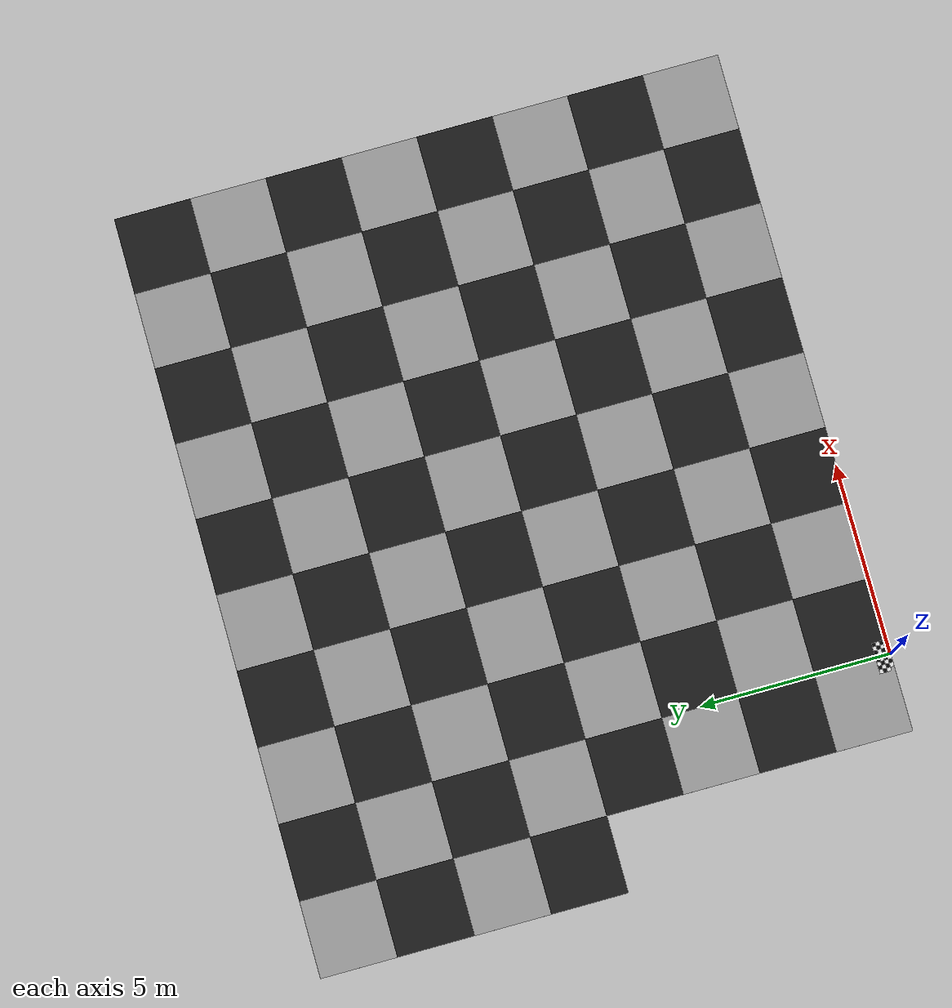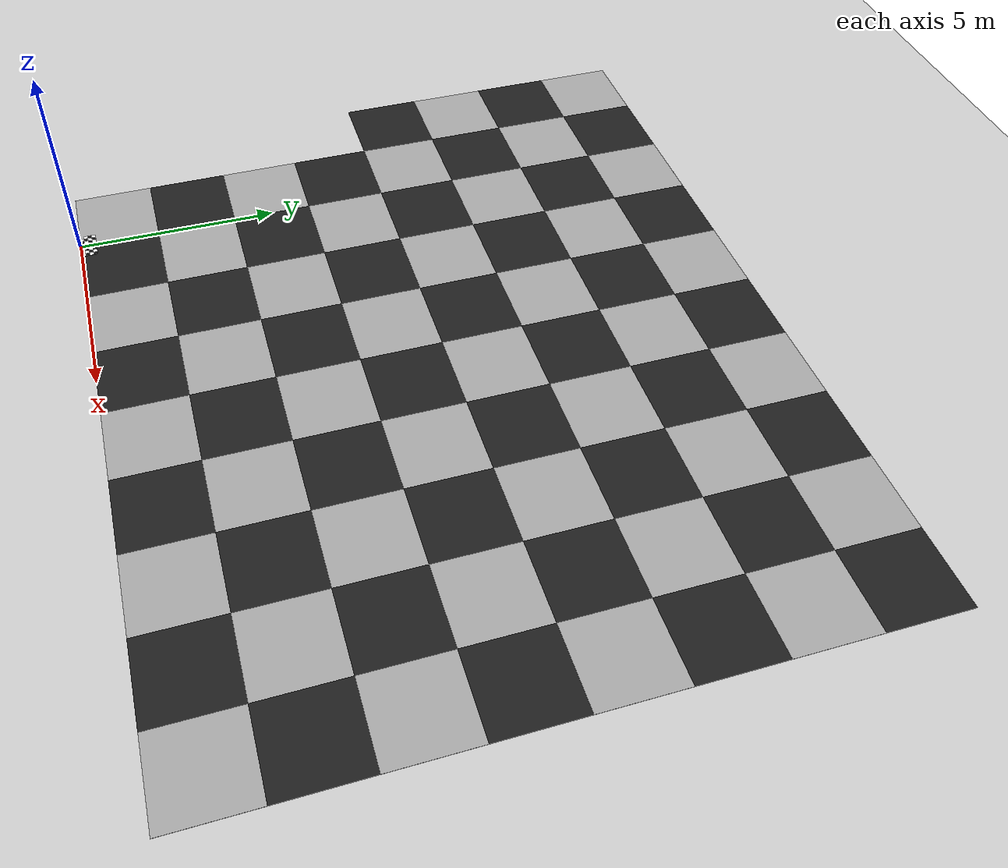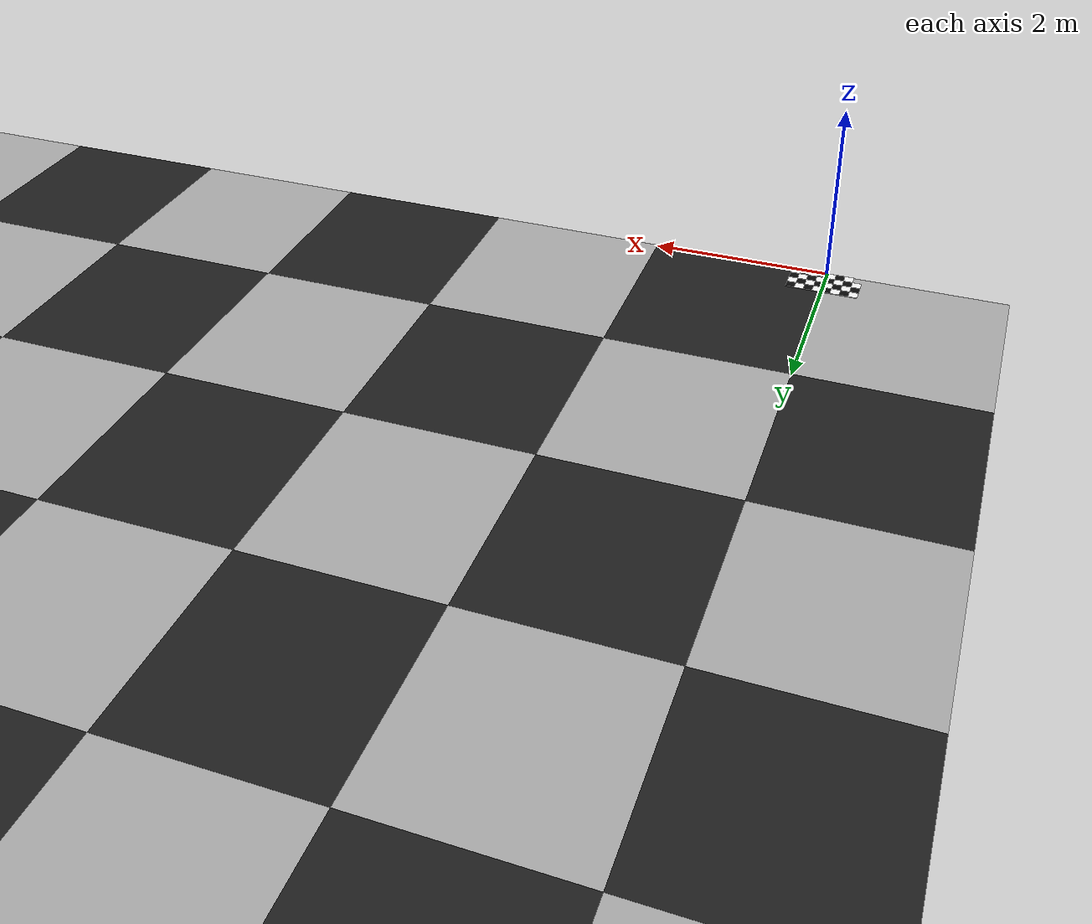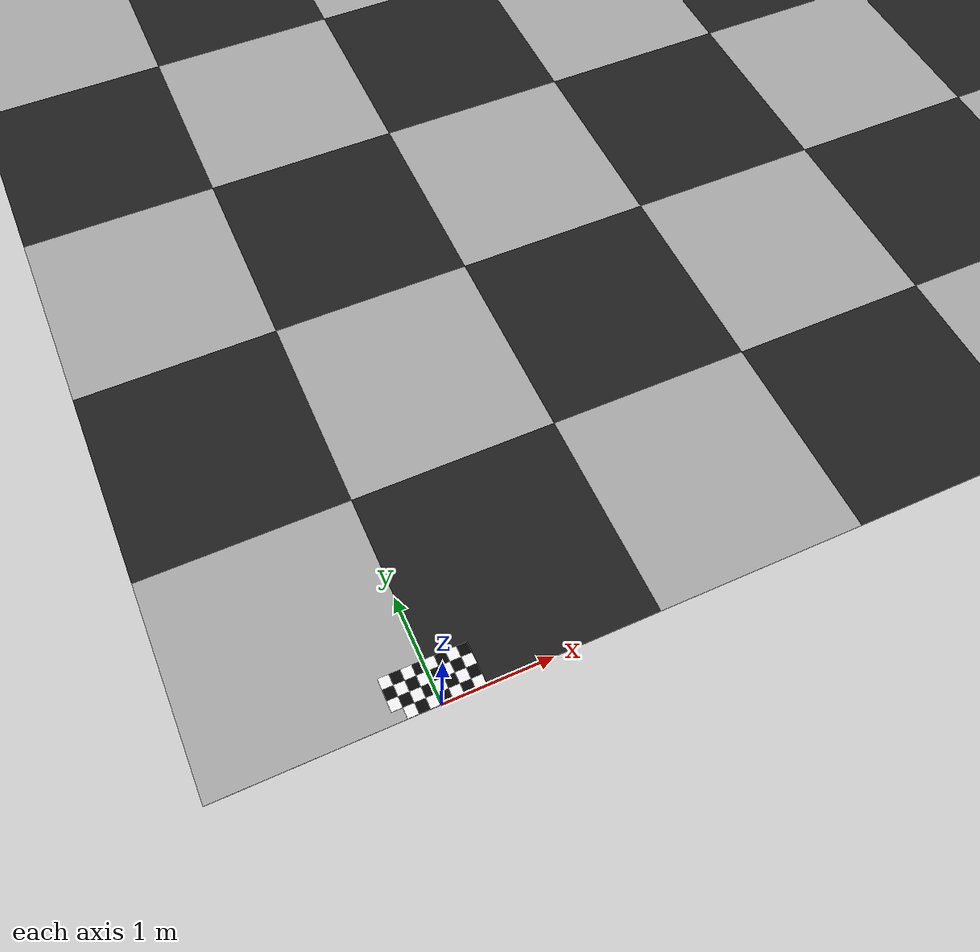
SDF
<sdf version="1.9">
 <world name="v6_optical_flow">
  <model name="ground_plane">
   <static>true</static>
   <link name="link">
    <collision name="collision">
     <geometry><plane><normal>0 0 1</normal><size>1 1</size></plane></geometry>
    </collision>
    <visual name="visual">
     <geometry><plane><normal>0 0 1</normal><size>500 500</size></plane></geometry>
     <material>
      <ambient>0.8 0.8 0.8 1</ambient>
      <diffuse>0.8 0.8 0.8 1</diffuse>
      <specular>0.1 0.1 0.1 1</specular>
     </material>
    </visual>
   </link>
  </model>
  <model name="optical_flow_floor">
   <static>true</static>
   <link name="tile_-2_4">
    <pose>-3 9 0.006 0 0 0</pose>
    <visual name="visual">
     <geometry><box><size>2 2 0.01</size></box></geometry>
     <material>
      <ambient>0.12 0.12 0.12 1</ambient>
      <diffuse>0.12 0.12 0.12 1</diffuse>
      <specular>0 0 0 1</specular>
     </material>
    </visual>
   </link>
   <link name="tile_-2_5">
    <pose>-3 11 0.006 0 0 0</pose>
    <visual name="visual">
     <geometry><box><size>2 2 0.01</size></box></geometry>
     <material>
      <ambient>0.65 0.65 0.65 1</ambient>
      <diffuse>0.65 0.65 0.65 1</diffuse>
      <specular>0 0 0 1</specular>
     </material>
    </visual>
   </link>
   <link name="tile_-2_6">
    <pose>-3 13 0.006 0 0 0</pose>
    <visual name="visual">
     <geometry><box><size>2 2 0.01</size></box></geometry>
     <material>
      <ambient>0.12 0.12 0.12 1</ambient>
      <diffuse>0.12 0.12 0.12 1</diffuse>
      <specular>0 0 0 1</specular>
     </material>
    </visual>
   </link>
   <link name="tile_-2_7">
    <pose>-3 15 0.006 0 0 0</pose>
    <visual name="visual">
     <geometry><box><size>2 2 0.01</size></box></geometry>
     <material>
      <ambient>0.65 0.65 0.65 1</ambient>
      <diffuse>0.65 0.65 0.65 1</diffuse>
      <specular>0 0 0 1</specular>
     </material>
    </visual>
   </link>
   <link name="tile_-1_0">
    <pose>-1 1 0.006 0 0 0</pose>
    <visual name="visual">
     <geometry><box><size>2 2 0.01</size></box></geometry>
     <material>
      <ambient>0.65 0.65 0.65 1</ambient>
      <diffuse>0.65 0.65 0.65 1</diffuse>
      <specular>0 0 0 1</specular>
     </material>
    </visual>
   </link>
   <link name="tile_-1_1">
    <pose>-1 3 0.006 0 0 0</pose>
    <visual name="visual">
     <geometry><box><size>2 2 0.01</size></box></geometry>
     <material>
      <ambient>0.12 0.12 0.12 1</ambient>
      <diffuse>0.12 0.12 0.12 1</diffuse>
      <specular>0 0 0 1</specular>
     </material>
    </visual>
   </link>
   <link name="tile_-1_2">
    <pose>-1 5 0.006 0 0 0</pose>
    <visual name="visual">
     <geometry><box><size>2 2 0.01</size></box></geometry>
     <material>
      <ambient>0.65 0.65 0.65 1</ambient>
      <diffuse>0.65 0.65 0.65 1</diffuse>
      <specular>0 0 0 1</specular>
     </material>
    </visual>
   </link>
   <link name="tile_-1_3">
    <pose>-1 7 0.006 0 0 0</pose>
    <visual name="visual">
     <geometry><box><size>2 2 0.01</size></box></geometry>
     <material>
      <ambient>0.12 0.12 0.12 1</ambient>
      <diffuse>0.12 0.12 0.12 1</diffuse>
      <specular>0 0 0 1</specular>
     </material>
    </visual>
   </link>
   <link name="tile_-1_4">
    <pose>-1 9 0.006 0 0 0</pose>
    <visual name="visual">
     <geometry><box><size>2 2 0.01</size></box></geometry>
     <material>
      <ambient>0.65 0.65 0.65 1</ambient>
      <diffuse>0.65 0.65 0.65 1</diffuse>
      <specular>0 0 0 1</specular>
     </material>
    </visual>
   </link>
   <link name="tile_-1_5">
    <pose>-1 11 0.006 0 0 0</pose>
    <visual name="visual">
     <geometry><box><size>2 2 0.01</size></box></geometry>
     <material>
      <ambient>0.12 0.12 0.12 1</ambient>
      <diffuse>0.12 0.12 0.12 1</diffuse>
      <specular>0 0 0 1</specular>
     </material>
    </visual>
   </link>
   <link name="tile_-1_6">
    <pose>-1 13 0.006 0 0 0</pose>
    <visual name="visual">
     <geometry><box><size>2 2 0.01</size></box></geometry>
     <material>
      <ambient>0.65 0.65 0.65 1</ambient>
      <diffuse>0.65 0.65 0.65 1</diffuse>
      <specular>0 0 0 1</specular>
     </material>
    </visual>
   </link>
   <link name="tile_-1_7">
    <pose>-1 15 0.006 0 0 0</pose>
    <visual name="visual">
     <geometry><box><size>2 2 0.01</size></box></geometry>
     <material>
      <ambient>0.12 0.12 0.12 1</ambient>
      <diffuse>0.12 0.12 0.12 1</diffuse>
      <specular>0 0 0 1</specular>
     </material>
    </visual>
   </link>
   <link name="tile_0_0">
    <pose>1 1 0.006 0 0 0</pose>
    <visual name="visual">
     <geometry><box><size>2 2 0.01</size></box></geometry>
     <material>
      <ambient>0.12 0.12 0.12 1</ambient>
      <diffuse>0.12 0.12 0.12 1</diffuse>
      <specular>0 0 0 1</specular>
     </material>
    </visual>
   </link>
   <link name="tile_0_1">
    <pose>1 3 0.006 0 0 0</pose>
    <visual name="visual">
     <geometry><box><size>2 2 0.01</size></box></geometry>
     <material>
      <ambient>0.65 0.65 0.65 1</ambient>
      <diffuse>0.65 0.65 0.65 1</diffuse>
      <specular>0 0 0 1</specular>
     </material>
    </visual>
   </link>
   <link name="tile_0_2">
    <pose>1 5 0.006 0 0 0</pose>
    <visual name="visual">
     <geometry><box><size>2 2 0.01</size></box></geometry>
     <material>
      <ambient>0.12 0.12 0.12 1</ambient>
      <diffuse>0.12 0.12 0.12 1</diffuse>
      <specular>0 0 0 1</specular>
     </material>
    </visual>
   </link>
   <link name="tile_0_3">
    <pose>1 7 0.006 0 0 0</pose>
    <visual name="visual">
     <geometry><box><size>2 2 0.01</size></box></geometry>
     <material>
      <ambient>0.65 0.65 0.65 1</ambient>
      <diffuse>0.65 0.65 0.65 1</diffuse>
      <specular>0 0 0 1</specular>
     </material>
    </visual>
   </link>
   <link name="tile_0_4">
    <pose>1 9 0.006 0 0 0</pose>
    <visual name="visual">
     <geometry><box><size>2 2 0.01</size></box></geometry>
     <material>
      <ambient>0.12 0.12 0.12 1</ambient>
      <diffuse>0.12 0.12 0.12 1</diffuse>
      <specular>0 0 0 1</specular>
     </material>
    </visual>
   </link>
   <link name="tile_0_5">
    <pose>1 11 0.006 0 0 0</pose>
    <visual name="visual">
     <geometry><box><size>2 2 0.01</size></box></geometry>
     <material>
      <ambient>0.65 0.65 0.65 1</ambient>
      <diffuse>0.65 0.65 0.65 1</diffuse>
      <specular>0 0 0 1</specular>
     </material>
    </visual>
   </link>
   <link name="tile_0_6">
    <pose>1 13 0.006 0 0 0</pose>
    <visual name="visual">
     <geometry><box><size>2 2 0.01</size></box></geometry>
     <material>
      <ambient>0.12 0.12 0.12 1</ambient>
      <diffuse>0.12 0.12 0.12 1</diffuse>
      <specular>0 0 0 1</specular>
     </material>
    </visual>
   </link>
   <link name="tile_0_7">
    <pose>1 15 0.006 0 0 0</pose>
    <visual name="visual">
     <geometry><box><size>2 2 0.01</size></box></geometry>
     <material>
      <ambient>0.65 0.65 0.65 1</ambient>
      <diffuse>0.65 0.65 0.65 1</diffuse>
      <specular>0 0 0 1</specular>
     </material>
    </visual>
   </link>
   <link name="tile_1_0">
    <pose>3 1 0.006 0 0 0</pose>
    <visual name="visual">
     <geometry><box><size>2 2 0.01</size></box></geometry>
     <material>
      <ambient>0.65 0.65 0.65 1</ambient>
      <diffuse>0.65 0.65 0.65 1</diffuse>
      <specular>0 0 0 1</specular>
     </material>
    </visual>
   </link>
   <link name="tile_1_1">
    <pose>3 3 0.006 0 0 0</pose>
    <visual name="visual">
     <geometry><box><size>2 2 0.01</size></box></geometry>
     <material>
      <ambient>0.12 0.12 0.12 1</ambient>
      <diffuse>0.12 0.12 0.12 1</diffuse>
      <specular>0 0 0 1</specular>
     </material>
    </visual>
   </link>
   <link name="tile_1_2">
    <pose>3 5 0.006 0 0 0</pose>
    <visual name="visual">
     <geometry><box><size>2 2 0.01</size></box></geometry>
     <material>
      <ambient>0.65 0.65 0.65 1</ambient>
      <diffuse>0.65 0.65 0.65 1</diffuse>
      <specular>0 0 0 1</specular>
     </material>
    </visual>
   </link>
   <link name="tile_1_3">
    <pose>3 7 0.006 0 0 0</pose>
    <visual name="visual">
     <geometry><box><size>2 2 0.01</size></box></geometry>
     <material>
      <ambient>0.12 0.12 0.12 1</ambient>
      <diffuse>0.12 0.12 0.12 1</diffuse>
      <specular>0 0 0 1</specular>
     </material>
    </visual>
   </link>
   <link name="tile_1_4">
    <pose>3 9 0.006 0 0 0</pose>
    <visual name="visual">
     <geometry><box><size>2 2 0.01</size></box></geometry>
     <material>
      <ambient>0.65 0.65 0.65 1</ambient>
      <diffuse>0.65 0.65 0.65 1</diffuse>
      <specular>0 0 0 1</specular>
     </material>
    </visual>
   </link>
   <link name="tile_1_5">
    <pose>3 11 0.006 0 0 0</pose>
    <visual name="visual">
     <geometry><box><size>2 2 0.01</size></box></geometry>
     <material>
      <ambient>0.12 0.12 0.12 1</ambient>
      <diffuse>0.12 0.12 0.12 1</diffuse>
      <specular>0 0 0 1</specular>
     </material>
    </visual>
   </link>
   <link name="tile_1_6">
    <pose>3 13 0.006 0 0 0</pose>
    <visual name="visual">
     <geometry><box><size>2 2 0.01</size></box></geometry>
     <material>
      <ambient>0.65 0.65 0.65 1</ambient>
      <diffuse>0.65 0.65 0.65 1</diffuse>
      <specular>0 0 0 1</specular>
     </material>
    </visual>
   </link>
   <link name="tile_1_7">
    <pose>3 15 0.006 0 0 0</pose>
    <visual name="visual">
     <geometry><box><size>2 2 0.01</size></box></geometry>
     <material>
      <ambient>0.12 0.12 0.12 1</ambient>
      <diffuse>0.12 0.12 0.12 1</diffuse>
      <specular>0 0 0 1</specular>
     </material>
    </visual>
   </link>
   <link name="tile_2_0">
    <pose>5 1 0.006 0 0 0</pose>
    <visual name="visual">
     <geometry><box><size>2 2 0.01</size></box></geometry>
     <material>
      <ambient>0.12 0.12 0.12 1</ambient>
      <diffuse>0.12 0.12 0.12 1</diffuse>
      <specular>0 0 0 1</specular>
     </material>
    </visual>
   </link>
   <link name="tile_2_1">
    <pose>5 3 0.006 0 0 0</pose>
    <visual name="visual">
     <geometry><box><size>2 2 0.01</size></box></geometry>
     <material>
      <ambient>0.65 0.65 0.65 1</ambient>
      <diffuse>0.65 0.65 0.65 1</diffuse>
      <specular>0 0 0 1</specular>
     </material>
    </visual>
   </link>
   <link name="tile_2_2">
    <pose>5 5 0.006 0 0 0</pose>
    <visual name="visual">
     <geometry><box><size>2 2 0.01</size></box></geometry>
     <material>
      <ambient>0.12 0.12 0.12 1</ambient>
      <diffuse>0.12 0.12 0.12 1</diffuse>
      <specular>0 0 0 1</specular>
     </material>
    </visual>
   </link>
   <link name="tile_2_3">
    <pose>5 7 0.006 0 0 0</pose>
    <visual name="visual">
     <geometry><box><size>2 2 0.01</size></box></geometry>
     <material>
      <ambient>0.65 0.65 0.65 1</ambient>
      <diffuse>0.65 0.65 0.65 1</diffuse>
      <specular>0 0 0 1</specular>
     </material>
    </visual>
   </link>
   <link name="tile_2_4">
    <pose>5 9 0.006 0 0 0</pose>
    <visual name="visual">
     <geometry><box><size>2 2 0.01</size></box></geometry>
     <material>
      <ambient>0.12 0.12 0.12 1</ambient>
      <diffuse>0.12 0.12 0.12 1</diffuse>
      <specular>0 0 0 1</specular>
     </material>
    </visual>
   </link>
   <link name="tile_2_5">
    <pose>5 11 0.006 0 0 0</pose>
    <visual name="visual">
     <geometry><box><size>2 2 0.01</size></box></geometry>
     <material>
      <ambient>0.65 0.65 0.65 1</ambient>
      <diffuse>0.65 0.65 0.65 1</diffuse>
      <specular>0 0 0 1</specular>
     </material>
    </visual>
   </link>
   <link name="tile_2_6">
    <pose>5 13 0.006 0 0 0</pose>
    <visual name="visual">
     <geometry><box><size>2 2 0.01</size></box></geometry>
     <material>
      <ambient>0.12 0.12 0.12 1</ambient>
      <diffuse>0.12 0.12 0.12 1</diffuse>
      <specular>0 0 0 1</specular>
     </material>
    </visual>
   </link>
   <link name="tile_2_7">
    <pose>5 15 0.006 0 0 0</pose>
    <visual name="visual">
     <geometry><box><size>2 2 0.01</size></box></geometry>
     <material>
      <ambient>0.65 0.65 0.65 1</ambient>
      <diffuse>0.65 0.65 0.65 1</diffuse>
      <specular>0 0 0 1</specular>
     </material>
    </visual>
   </link>
   <link name="tile_3_0">
    <pose>7 1 0.006 0 0 0</pose>
    <visual name="visual">
     <geometry><box><size>2 2 0.01</size></box></geometry>
     <material>
      <ambient>0.65 0.65 0.65 1</ambient>
      <diffuse>0.65 0.65 0.65 1</diffuse>
      <specular>0 0 0 1</specular>
     </material>
    </visual>
   </link>
   <link name="tile_3_1">
    <pose>7 3 0.006 0 0 0</pose>
    <visual name="visual">
     <geometry><box><size>2 2 0.01</size></box></geometry>
     <material>
      <ambient>0.12 0.12 0.12 1</ambient>
      <diffuse>0.12 0.12 0.12 1</diffuse>
      <specular>0 0 0 1</specular>
     </material>
    </visual>
   </link>
   <link name="tile_3_2">
    <pose>7 5 0.006 0 0 0</pose>
    <visual name="visual">
     <geometry><box><size>2 2 0.01</size></box></geometry>
     <material>
      <ambient>0.65 0.65 0.65 1</ambient>
      <diffuse>0.65 0.65 0.65 1</diffuse>
      <specular>0 0 0 1</specular>
     </material>
    </visual>
   </link>
   <link name="tile_3_3">
    <pose>7 7 0.006 0 0 0</pose>
    <visual name="visual">
     <geometry><box><size>2 2 0.01</size></box></geometry>
     <material>
      <ambient>0.12 0.12 0.12 1</ambient>
      <diffuse>0.12 0.12 0.12 1</diffuse>
      <specular>0 0 0 1</specular>
     </material>
    </visual>
   </link>
   <link name="tile_3_4">
    <pose>7 9 0.006 0 0 0</pose>
    <visual name="visual">
     <geometry><box><size>2 2 0.01</size></box></geometry>
     <material>
      <ambient>0.65 0.65 0.65 1</ambient>
      <diffuse>0.65 0.65 0.65 1</diffuse>
      <specular>0 0 0 1</specular>
     </material>
    </visual>
   </link>
   <link name="tile_3_5">
    <pose>7 11 0.006 0 0 0</pose>
    <visual name="visual">
     <geometry><box><size>2 2 0.01</size></box></geometry>
     <material>
      <ambient>0.12 0.12 0.12 1</ambient>
      <diffuse>0.12 0.12 0.12 1</diffuse>
      <specular>0 0 0 1</specular>
     </material>
    </visual>
   </link>
   <link name="tile_3_6">
    <pose>7 13 0.006 0 0 0</pose>
    <visual name="visual">
     <geometry><box><size>2 2 0.01</size></box></geometry>
     <material>
      <ambient>0.65 0.65 0.65 1</ambient>
      <diffuse>0.65 0.65 0.65 1</diffuse>
      <specular>0 0 0 1</specular>
     </material>
    </visual>
   </link>
   <link name="tile_3_7">
    <pose>7 15 0.006 0 0 0</pose>
    <visual name="visual">
     <geometry><box><size>2 2 0.01</size></box></geometry>
     <material>
      <ambient>0.12 0.12 0.12 1</ambient>
      <diffuse>0.12 0.12 0.12 1</diffuse>
      <specular>0 0 0 1</specular>
     </material>
    </visual>
   </link>
   <link name="tile_4_0">
    <pose>9 1 0.006 0 0 0</pose>
    <visual name="visual">
     <geometry><box><size>2 2 0.01</size></box></geometry>
     <material>
      <ambient>0.12 0.12 0.12 1</ambient>
      <diffuse>0.12 0.12 0.12 1</diffuse>
      <specular>0 0 0 1</specular>
     </material>
    </visual>
   </link>
   <link name="tile_4_1">
    <pose>9 3 0.006 0 0 0</pose>
    <visual name="visual">
     <geometry><box><size>2 2 0.01</size></box></geometry>
     <material>
      <ambient>0.65 0.65 0.65 1</ambient>
      <diffuse>0.65 0.65 0.65 1</diffuse>
      <specular>0 0 0 1</specular>
     </material>
    </visual>
   </link>
   <link name="tile_4_2">
    <pose>9 5 0.006 0 0 0</pose>
    <visual name="visual">
     <geometry><box><size>2 2 0.01</size></box></geometry>
     <material>
      <ambient>0.12 0.12 0.12 1</ambient>
      <diffuse>0.12 0.12 0.12 1</diffuse>
      <specular>0 0 0 1</specular>
     </material>
    </visual>
   </link>
   <link name="tile_4_3">
    <pose>9 7 0.006 0 0 0</pose>
    <visual name="visual">
     <geometry><box><size>2 2 0.01</size></box></geometry>
     <material>
      <ambient>0.65 0.65 0.65 1</ambient>
      <diffuse>0.65 0.65 0.65 1</diffuse>
      <specular>0 0 0 1</specular>
     </material>
    </visual>
   </link>
   <link name="tile_4_4">
    <pose>9 9 0.006 0 0 0</pose>
    <visual name="visual">
     <geometry><box><size>2 2 0.01</size></box></geometry>
     <material>
      <ambient>0.12 0.12 0.12 1</ambient>
      <diffuse>0.12 0.12 0.12 1</diffuse>
      <specular>0 0 0 1</specular>
     </material>
    </visual>
   </link>
   <link name="tile_4_5">
    <pose>9 11 0.006 0 0 0</pose>
    <visual name="visual">
     <geometry><box><size>2 2 0.01</size></box></geometry>
     <material>
      <ambient>0.65 0.65 0.65 1</ambient>
      <diffuse>0.65 0.65 0.65 1</diffuse>
      <specular>0 0 0 1</specular>
     </material>
    </visual>
   </link>
   <link name="tile_4_6">
    <pose>9 13 0.006 0 0 0</pose>
    <visual name="visual">
     <geometry><box><size>2 2 0.01</size></box></geometry>
     <material>
      <ambient>0.12 0.12 0.12 1</ambient>
      <diffuse>0.12 0.12 0.12 1</diffuse>
      <specular>0 0 0 1</specular>
     </material>
    </visual>
   </link>
   <link name="tile_4_7">
    <pose>9 15 0.006 0 0 0</pose>
    <visual name="visual">
     <geometry><box><size>2 2 0.01</size></box></geometry>
     <material>
      <ambient>0.65 0.65 0.65 1</ambient>
      <diffuse>0.65 0.65 0.65 1</diffuse>
      <specular>0 0 0 1</specular>
     </material>
    </visual>
   </link>
   <link name="tile_5_0">
    <pose>11 1 0.006 0 0 0</pose>
    <visual name="visual">
     <geometry><box><size>2 2 0.01</size></box></geometry>
     <material>
      <ambient>0.65 0.65 0.65 1</ambient>
      <diffuse>0.65 0.65 0.65 1</diffuse>
      <specular>0 0 0 1</specular>
     </material>
    </visual>
   </link>
   <link name="tile_5_1">
    <pose>11 3 0.006 0 0 0</pose>
    <visual name="visual">
     <geometry><box><size>2 2 0.01</size></box></geometry>
     <material>
      <ambient>0.12 0.12 0.12 1</ambient>
      <diffuse>0.12 0.12 0.12 1</diffuse>
      <specular>0 0 0 1</specular>
     </material>
    </visual>
   </link>
   <link name="tile_5_2">
    <pose>11 5 0.006 0 0 0</pose>
    <visual name="visual">
     <geometry><box><size>2 2 0.01</size></box></geometry>
     <material>
      <ambient>0.65 0.65 0.65 1</ambient>
      <diffuse>0.65 0.65 0.65 1</diffuse>
      <specular>0 0 0 1</specular>
     </material>
    </visual>
   </link>
   <link name="tile_5_3">
    <pose>11 7 0.006 0 0 0</pose>
    <visual name="visual">
     <geometry><box><size>2 2 0.01</size></box></geometry>
     <material>
      <ambient>0.12 0.12 0.12 1</ambient>
      <diffuse>0.12 0.12 0.12 1</diffuse>
      <specular>0 0 0 1</specular>
     </material>
    </visual>
   </link>
   <link name="tile_5_4">
    <pose>11 9 0.006 0 0 0</pose>
    <visual name="visual">
     <geometry><box><size>2 2 0.01</size></box></geometry>
     <material>
      <ambient>0.65 0.65 0.65 1</ambient>
      <diffuse>0.65 0.65 0.65 1</diffuse>
      <specular>0 0 0 1</specular>
     </material>
    </visual>
   </link>
   <link name="tile_5_5">
    <pose>11 11 0.006 0 0 0</pose>
    <visual name="visual">
     <geometry><box><size>2 2 0.01</size></box></geometry>
     <material>
      <ambient>0.12 0.12 0.12 1</ambient>
      <diffuse>0.12 0.12 0.12 1</diffuse>
      <specular>0 0 0 1</specular>
     </material>
    </visual>
   </link>
   <link name="tile_5_6">
    <pose>11 13 0.006 0 0 0</pose>
    <visual name="visual">
     <geometry><box><size>2 2 0.01</size></box></geometry>
     <material>
      <ambient>0.65 0.65 0.65 1</ambient>
      <diffuse>0.65 0.65 0.65 1</diffuse>
      <specular>0 0 0 1</specular>
     </material>
    </visual>
   </link>
   <link name="tile_5_7">
    <pose>11 15 0.006 0 0 0</pose>
    <visual name="visual">
     <geometry><box><size>2 2 0.01</size></box></geometry>
     <material>
      <ambient>0.12 0.12 0.12 1</ambient>
      <diffuse>0.12 0.12 0.12 1</diffuse>
      <specular>0 0 0 1</specular>
     </material>
    </visual>
   </link>
   <link name="tile_6_0">
    <pose>13 1 0.006 0 0 0</pose>
    <visual name="visual">
     <geometry><box><size>2 2 0.01</size></box></geometry>
     <material>
      <ambient>0.12 0.12 0.12 1</ambient>
      <diffuse>0.12 0.12 0.12 1</diffuse>
      <specular>0 0 0 1</specular>
     </material>
    </visual>
   </link>
   <link name="tile_6_1">
    <pose>13 3 0.006 0 0 0</pose>
    <visual name="visual">
     <geometry><box><size>2 2 0.01</size></box></geometry>
     <material>
      <ambient>0.65 0.65 0.65 1</ambient>
      <diffuse>0.65 0.65 0.65 1</diffuse>
      <specular>0 0 0 1</specular>
     </material>
    </visual>
   </link>
   <link name="tile_6_2">
    <pose>13 5 0.006 0 0 0</pose>
    <visual name="visual">
     <geometry><box><size>2 2 0.01</size></box></geometry>
     <material>
      <ambient>0.12 0.12 0.12 1</ambient>
      <diffuse>0.12 0.12 0.12 1</diffuse>
      <specular>0 0 0 1</specular>
     </material>
    </visual>
   </link>
   <link name="tile_6_3">
    <pose>13 7 0.006 0 0 0</pose>
    <visual name="visual">
     <geometry><box><size>2 2 0.01</size></box></geometry>
     <material>
      <ambient>0.65 0.65 0.65 1</ambient>
      <diffuse>0.65 0.65 0.65 1</diffuse>
      <specular>0 0 0 1</specular>
     </material>
    </visual>
   </link>
   <link name="tile_6_4">
    <pose>13 9 0.006 0 0 0</pose>
    <visual name="visual">
     <geometry><box><size>2 2 0.01</size></box></geometry>
     <material>
      <ambient>0.12 0.12 0.12 1</ambient>
      <diffuse>0.12 0.12 0.12 1</diffuse>
      <specular>0 0 0 1</specular>
     </material>
    </visual>
   </link>
   <link name="tile_6_5">
    <pose>13 11 0.006 0 0 0</pose>
    <visual name="visual">
     <geometry><box><size>2 2 0.01</size></box></geometry>
     <material>
      <ambient>0.65 0.65 0.65 1</ambient>
      <diffuse>0.65 0.65 0.65 1</diffuse>
      <specular>0 0 0 1</specular>
     </material>
    </visual>
   </link>
   <link name="tile_6_6">
    <pose>13 13 0.006 0 0 0</pose>
    <visual name="visual">
     <geometry><box><size>2 2 0.01</size></box></geometry>
     <material>
      <ambient>0.12 0.12 0.12 1</ambient>
      <diffuse>0.12 0.12 0.12 1</diffuse>
      <specular>0 0 0 1</specular>
     </material>
    </visual>
   </link>
   <link name="tile_6_7">
    <pose>13 15 0.006 0 0 0</pose>
    <visual name="visual">
     <geometry><box><size>2 2 0.01</size></box></geometry>
     <material>
      <ambient>0.65 0.65 0.65 1</ambient>
      <diffuse>0.65 0.65 0.65 1</diffuse>
      <specular>0 0 0 1</specular>
     </material>
    </visual>
   </link>
   <link name="tile_7_0">
    <pose>15 1 0.006 0 0 0</pose>
    <visual name="visual">
     <geometry><box><size>2 2 0.01</size></box></geometry>
     <material>
      <ambient>0.65 0.65 0.65 1</ambient>
      <diffuse>0.65 0.65 0.65 1</diffuse>
      <specular>0 0 0 1</specular>
     </material>
    </visual>
   </link>
   <link name="tile_7_1">
    <pose>15 3 0.006 0 0 0</pose>
    <visual name="visual">
     <geometry><box><size>2 2 0.01</size></box></geometry>
     <material>
      <ambient>0.12 0.12 0.12 1</ambient>
      <diffuse>0.12 0.12 0.12 1</diffuse>
      <specular>0 0 0 1</specular>
     </material>
    </visual>
   </link>
   <link name="tile_7_2">
    <pose>15 5 0.006 0 0 0</pose>
    <visual name="visual">
     <geometry><box><size>2 2 0.01</size></box></geometry>
     <material>
      <ambient>0.65 0.65 0.65 1</ambient>
      <diffuse>0.65 0.65 0.65 1</diffuse>
      <specular>0 0 0 1</specular>
     </material>
    </visual>
   </link>
   <link name="tile_7_3">
    <pose>15 7 0.006 0 0 0</pose>
    <visual name="visual">
     <geometry><box><size>2 2 0.01</size></box></geometry>
     <material>
      <ambient>0.12 0.12 0.12 1</ambient>
      <diffuse>0.12 0.12 0.12 1</diffuse>
      <specular>0 0 0 1</specular>
     </material>
    </visual>
   </link>
   <link name="tile_7_4">
    <pose>15 9 0.006 0 0 0</pose>
    <visual name="visual">
     <geometry><box><size>2 2 0.01</size></box></geometry>
     <material>
      <ambient>0.65 0.65 0.65 1</ambient>
      <diffuse>0.65 0.65 0.65 1</diffuse>
      <specular>0 0 0 1</specular>
     </material>
    </visual>
   </link>
   <link name="tile_7_5">
    <pose>15 11 0.006 0 0 0</pose>
    <visual name="visual">
     <geometry><box><size>2 2 0.01</size></box></geometry>
     <material>
      <ambient>0.12 0.12 0.12 1</ambient>
      <diffuse>0.12 0.12 0.12 1</diffuse>
      <specular>0 0 0 1</specular>
     </material>
    </visual>
   </link>
   <link name="tile_7_6">
    <pose>15 13 0.006 0 0 0</pose>
    <visual name="visual">
     <geometry><box><size>2 2 0.01</size></box></geometry>
     <material>
      <ambient>0.65 0.65 0.65 1</ambient>
      <diffuse>0.65 0.65 0.65 1</diffuse>
      <specular>0 0 0 1</specular>
     </material>
    </visual>
   </link>
   <link name="tile_7_7">
    <pose>15 15 0.006 0 0 0</pose>
    <visual name="visual">
     <geometry><box><size>2 2 0.01</size></box></geometry>
     <material>
      <ambient>0.12 0.12 0.12 1</ambient>
      <diffuse>0.12 0.12 0.12 1</diffuse>
      <specular>0 0 0 1</specular>
     </material>
    </visual>
   </link>
   <link name="fine_tile_-4_1">
    <pose>-0.35000000000000003 0.15000000000000002 0.012 0 0 0</pose>
    <visual name="visual">
     <geometry><box><size>0.1 0.1 0.01</size></box></geometry>
     <material>
      <ambient>0.95 0.95 0.95 1</ambient>
      <diffuse>0.95 0.95 0.95 1</diffuse>
      <specular>0 0 0 1</specular>
     </material>
    </visual>
   </link>
   <link name="fine_tile_-4_2">
    <pose>-0.35000000000000003 0.25 0.012 0 0 0</pose>
    <visual name="visual">
     <geometry><box><size>0.1 0.1 0.01</size></box></geometry>
     <material>
      <ambient>0.03 0.03 0.03 1</ambient>
      <diffuse>0.03 0.03 0.03 1</diffuse>
      <specular>0 0 0 1</specular>
     </material>
    </visual>
   </link>
   <link name="fine_tile_-4_3">
    <pose>-0.35000000000000003 0.35000000000000003 0.012 0 0 0</pose>
    <visual name="visual">
     <geometry><box><size>0.1 0.1 0.01</size></box></geometry>
     <material>
      <ambient>0.95 0.95 0.95 1</ambient>
      <diffuse>0.95 0.95 0.95 1</diffuse>
      <specular>0 0 0 1</specular>
     </material>
    </visual>
   </link>
   <link name="fine_tile_-3_0">
    <pose>-0.25 0.05 0.012 0 0 0</pose>
    <visual name="visual">
     <geometry><box><size>0.1 0.1 0.01</size></box></geometry>
     <material>
      <ambient>0.95 0.95 0.95 1</ambient>
      <diffuse>0.95 0.95 0.95 1</diffuse>
      <specular>0 0 0 1</specular>
     </material>
    </visual>
   </link>
   <link name="fine_tile_-3_1">
    <pose>-0.25 0.15000000000000002 0.012 0 0 0</pose>
    <visual name="visual">
     <geometry><box><size>0.1 0.1 0.01</size></box></geometry>
     <material>
      <ambient>0.03 0.03 0.03 1</ambient>
      <diffuse>0.03 0.03 0.03 1</diffuse>
      <specular>0 0 0 1</specular>
     </material>
    </visual>
   </link>
   <link name="fine_tile_-3_2">
    <pose>-0.25 0.25 0.012 0 0 0</pose>
    <visual name="visual">
     <geometry><box><size>0.1 0.1 0.01</size></box></geometry>
     <material>
      <ambient>0.95 0.95 0.95 1</ambient>
      <diffuse>0.95 0.95 0.95 1</diffuse>
      <specular>0 0 0 1</specular>
     </material>
    </visual>
   </link>
   <link name="fine_tile_-3_3">
    <pose>-0.25 0.35000000000000003 0.012 0 0 0</pose>
    <visual name="visual">
     <geometry><box><size>0.1 0.1 0.01</size></box></geometry>
     <material>
      <ambient>0.03 0.03 0.03 1</ambient>
      <diffuse>0.03 0.03 0.03 1</diffuse>
      <specular>0 0 0 1</specular>
     </material>
    </visual>
   </link>
   <link name="fine_tile_-2_0">
    <pose>-0.15000000000000002 0.05 0.012 0 0 0</pose>
    <visual name="visual">
     <geometry><box><size>0.1 0.1 0.01</size></box></geometry>
     <material>
      <ambient>0.03 0.03 0.03 1</ambient>
      <diffuse>0.03 0.03 0.03 1</diffuse>
      <specular>0 0 0 1</specular>
     </material>
    </visual>
   </link>
   <link name="fine_tile_-2_1">
    <pose>-0.15000000000000002 0.15000000000000002 0.012 0 0 0</pose>
    <visual name="visual">
     <geometry><box><size>0.1 0.1 0.01</size></box></geometry>
     <material>
      <ambient>0.95 0.95 0.95 1</ambient>
      <diffuse>0.95 0.95 0.95 1</diffuse>
      <specular>0 0 0 1</specular>
     </material>
    </visual>
   </link>
   <link name="fine_tile_-2_2">
    <pose>-0.15000000000000002 0.25 0.012 0 0 0</pose>
    <visual name="visual">
     <geometry><box><size>0.1 0.1 0.01</size></box></geometry>
     <material>
      <ambient>0.03 0.03 0.03 1</ambient>
      <diffuse>0.03 0.03 0.03 1</diffuse>
      <specular>0 0 0 1</specular>
     </material>
    </visual>
   </link>
   <link name="fine_tile_-2_3">
    <pose>-0.15000000000000002 0.35000000000000003 0.012 0 0 0</pose>
    <visual name="visual">
     <geometry><box><size>0.1 0.1 0.01</size></box></geometry>
     <material>
      <ambient>0.95 0.95 0.95 1</ambient>
      <diffuse>0.95 0.95 0.95 1</diffuse>
      <specular>0 0 0 1</specular>
     </material>
    </visual>
   </link>
   <link name="fine_tile_-1_0">
    <pose>-0.05 0.05 0.012 0 0 0</pose>
    <visual name="visual">
     <geometry><box><size>0.1 0.1 0.01</size></box></geometry>
     <material>
      <ambient>0.95 0.95 0.95 1</ambient>
      <diffuse>0.95 0.95 0.95 1</diffuse>
      <specular>0 0 0 1</specular>
     </material>
    </visual>
   </link>
   <link name="fine_tile_-1_1">
    <pose>-0.05 0.15000000000000002 0.012 0 0 0</pose>
    <visual name="visual">
     <geometry><box><size>0.1 0.1 0.01</size></box></geometry>
     <material>
      <ambient>0.03 0.03 0.03 1</ambient>
      <diffuse>0.03 0.03 0.03 1</diffuse>
      <specular>0 0 0 1</specular>
     </material>
    </visual>
   </link>
   <link name="fine_tile_-1_2">
    <pose>-0.05 0.25 0.012 0 0 0</pose>
    <visual name="visual">
     <geometry><box><size>0.1 0.1 0.01</size></box></geometry>
     <material>
      <ambient>0.95 0.95 0.95 1</ambient>
      <diffuse>0.95 0.95 0.95 1</diffuse>
      <specular>0 0 0 1</specular>
     </material>
    </visual>
   </link>
   <link name="fine_tile_-1_3">
    <pose>-0.05 0.35000000000000003 0.012 0 0 0</pose>
    <visual name="visual">
     <geometry><box><size>0.1 0.1 0.01</size></box></geometry>
     <material>
      <ambient>0.03 0.03 0.03 1</ambient>
      <diffuse>0.03 0.03 0.03 1</diffuse>
      <specular>0 0 0 1</specular>
     </material>
    </visual>
   </link>
   <link name="fine_tile_0_0">
    <pose>0.05 0.05 0.012 0 0 0</pose>
    <visual name="visual">
     <geometry><box><size>0.1 0.1 0.01</size></box></geometry>
     <material>
      <ambient>0.03 0.03 0.03 1</ambient>
      <diffuse>0.03 0.03 0.03 1</diffuse>
      <specular>0 0 0 1</specular>
     </material>
    </visual>
   </link>
   <link name="fine_tile_0_1">
    <pose>0.05 0.15000000000000002 0.012 0 0 0</pose>
    <visual name="visual">
     <geometry><box><size>0.1 0.1 0.01</size></box></geometry>
     <material>
      <ambient>0.95 0.95 0.95 1</ambient>
      <diffuse>0.95 0.95 0.95 1</diffuse>
      <specular>0 0 0 1</specular>
     </material>
    </visual>
   </link>
   <link name="fine_tile_0_2">
    <pose>0.05 0.25 0.012 0 0 0</pose>
    <visual name="visual">
     <geometry><box><size>0.1 0.1 0.01</size></box></geometry>
     <material>
      <ambient>0.03 0.03 0.03 1</ambient>
      <diffuse>0.03 0.03 0.03 1</diffuse>
      <specular>0 0 0 1</specular>
     </material>
    </visual>
   </link>
   <link name="fine_tile_0_3">
    <pose>0.05 0.35000000000000003 0.012 0 0 0</pose>
    <visual name="visual">
     <geometry><box><size>0.1 0.1 0.01</size></box></geometry>
     <material>
      <ambient>0.95 0.95 0.95 1</ambient>
      <diffuse>0.95 0.95 0.95 1</diffuse>
      <specular>0 0 0 1</specular>
     </material>
    </visual>
   </link>
   <link name="fine_tile_1_0">
    <pose>0.15000000000000002 0.05 0.012 0 0 0</pose>
    <visual name="visual">
     <geometry><box><size>0.1 0.1 0.01</size></box></geometry>
     <material>
      <ambient>0.95 0.95 0.95 1</ambient>
      <diffuse>0.95 0.95 0.95 1</diffuse>
      <specular>0 0 0 1</specular>
     </material>
    </visual>
   </link>
   <link name="fine_tile_1_1">
    <pose>0.15000000000000002 0.15000000000000002 0.012 0 0 0</pose>
    <visual name="visual">
     <geometry><box><size>0.1 0.1 0.01</size></box></geometry>
     <material>
      <ambient>0.03 0.03 0.03 1</ambient>
      <diffuse>0.03 0.03 0.03 1</diffuse>
      <specular>0 0 0 1</specular>
     </material>
    </visual>
   </link>
   <link name="fine_tile_1_2">
    <pose>0.15000000000000002 0.25 0.012 0 0 0</pose>
    <visual name="visual">
     <geometry><box><size>0.1 0.1 0.01</size></box></geometry>
     <material>
      <ambient>0.95 0.95 0.95 1</ambient>
      <diffuse>0.95 0.95 0.95 1</diffuse>
      <specular>0 0 0 1</specular>
     </material>
    </visual>
   </link>
   <link name="fine_tile_1_3">
    <pose>0.15000000000000002 0.35000000000000003 0.012 0 0 0</pose>
    <visual name="visual">
     <geometry><box><size>0.1 0.1 0.01</size></box></geometry>
     <material>
      <ambient>0.03 0.03 0.03 1</ambient>
      <diffuse>0.03 0.03 0.03 1</diffuse>
      <specular>0 0 0 1</specular>
     </material>
    </visual>
   </link>
   <link name="fine_tile_2_0">
    <pose>0.25 0.05 0.012 0 0 0</pose>
    <visual name="visual">
     <geometry><box><size>0.1 0.1 0.01</size></box></geometry>
     <material>
      <ambient>0.03 0.03 0.03 1</ambient>
      <diffuse>0.03 0.03 0.03 1</diffuse>
      <specular>0 0 0 1</specular>
     </material>
    </visual>
   </link>
   <link name="fine_tile_2_1">
    <pose>0.25 0.15000000000000002 0.012 0 0 0</pose>
    <visual name="visual">
     <geometry><box><size>0.1 0.1 0.01</size></box></geometry>
     <material>
      <ambient>0.95 0.95 0.95 1</ambient>
      <diffuse>0.95 0.95 0.95 1</diffuse>
      <specular>0 0 0 1</specular>
     </material>
    </visual>
   </link>
   <link name="fine_tile_2_2">
    <pose>0.25 0.25 0.012 0 0 0</pose>
    <visual name="visual">
     <geometry><box><size>0.1 0.1 0.01</size></box></geometry>
     <material>
      <ambient>0.03 0.03 0.03 1</ambient>
      <diffuse>0.03 0.03 0.03 1</diffuse>
      <specular>0 0 0 1</specular>
     </material>
    </visual>
   </link>
   <link name="fine_tile_2_3">
    <pose>0.25 0.35000000000000003 0.012 0 0 0</pose>
    <visual name="visual">
     <geometry><box><size>0.1 0.1 0.01</size></box></geometry>
     <material>
      <ambient>0.95 0.95 0.95 1</ambient>
      <diffuse>0.95 0.95 0.95 1</diffuse>
      <specular>0 0 0 1</specular>
     </material>
    </visual>
   </link>
   <link name="fine_tile_3_0">
    <pose>0.35000000000000003 0.05 0.012 0 0 0</pose>
    <visual name="visual">
     <geometry><box><size>0.1 0.1 0.01</size></box></geometry>
     <material>
      <ambient>0.95 0.95 0.95 1</ambient>
      <diffuse>0.95 0.95 0.95 1</diffuse>
      <specular>0 0 0 1</specular>
     </material>
    </visual>
   </link>
   <link name="fine_tile_3_1">
    <pose>0.35000000000000003 0.15000000000000002 0.012 0 0 0</pose>
    <visual name="visual">
     <geometry><box><size>0.1 0.1 0.01</size></box></geometry>
     <material>
      <ambient>0.03 0.03 0.03 1</ambient>
      <diffuse>0.03 0.03 0.03 1</diffuse>
      <specular>0 0 0 1</specular>
     </material>
    </visual>
   </link>
   <link name="fine_tile_3_2">
    <pose>0.35000000000000003 0.25 0.012 0 0 0</pose>
    <visual name="visual">
     <geometry><box><size>0.1 0.1 0.01</size></box></geometry>
     <material>
      <ambient>0.95 0.95 0.95 1</ambient>
      <diffuse>0.95 0.95 0.95 1</diffuse>
      <specular>0 0 0 1</specular>
     </material>
    </visual>
   </link>
   <link name="fine_tile_3_3">
    <pose>0.35000000000000003 0.35000000000000003 0.012 0 0 0</pose>
    <visual name="visual">
     <geometry><box><size>0.1 0.1 0.01</size></box></geometry>
     <material>
      <ambient>0.03 0.03 0.03 1</ambient>
      <diffuse>0.03 0.03 0.03 1</diffuse>
      <specular>0 0 0 1</specular>
     </material>
    </visual>
   </link>
  </model>
 </world>
</sdf>
